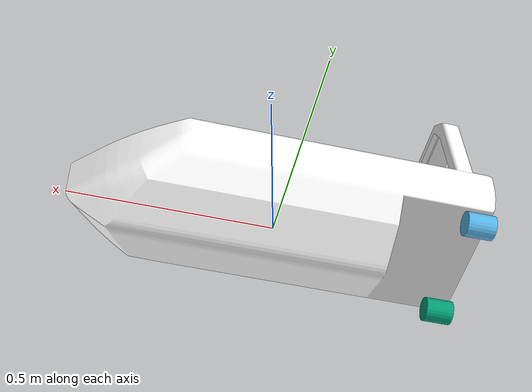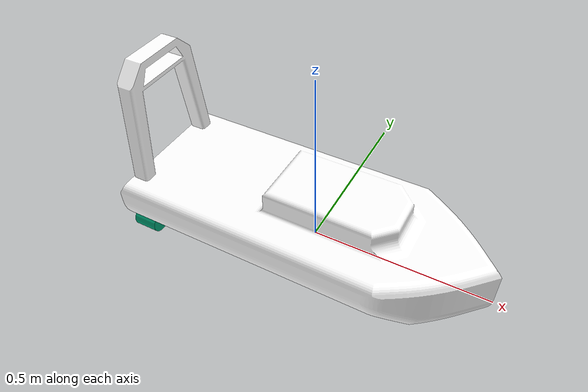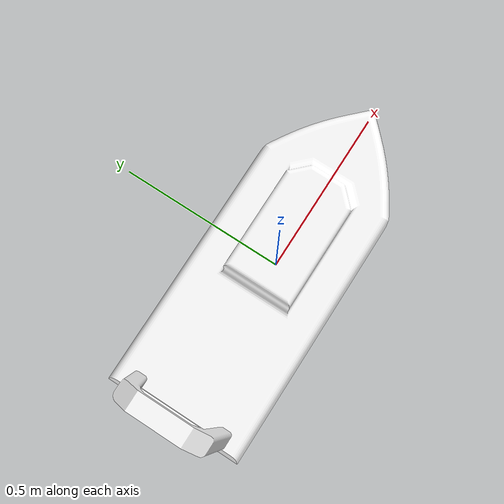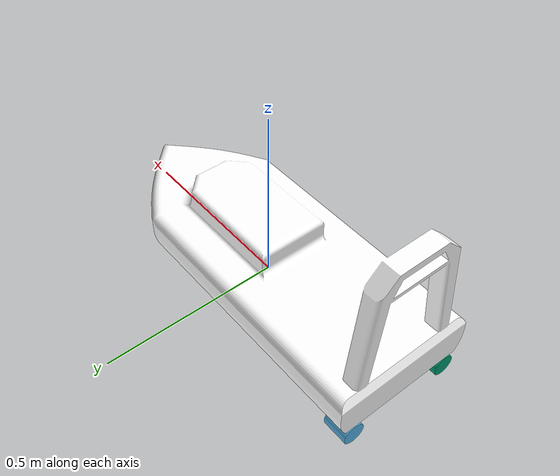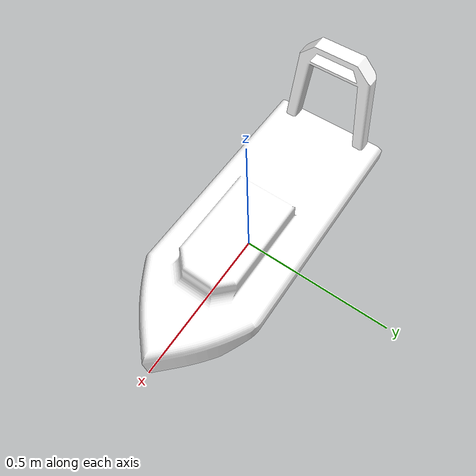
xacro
<?xml version='1.0'?>

<robot name="garbage_boat" xmlns:xacro="http://www.ros.org/wiki/xacro">
  <xacro:include filename="$(find garbage_boat)/urdf/common_macros.xacro" />
  <xacro:include filename="$(find garbage_boat)/urdf/garbage_boat.urdf.gazebo" />

  <material name="COLOR">
   <color rgba="1 1 1 1"/>
 </material>
  <link name='base_link'>
    <pose>0 0 0.1 0 0 0</pose>
    <visual name='chassis_visual'>
      <origin xyz="0 0 -0.1" rpy="0 0 ${pi/2}"/>
      <geometry>
        <mesh filename="package://garbage_boat/meshes/RobotBatPOrsjekt_v4_v5.stl" scale="0.001 0.001 0.001"/>
      </geometry>
      <material name="COLOR"/>
    </visual>
    <collision>
      <origin xyz="0 0 0.07" rpy="0 0 0"/>
      <geometry>
        <box size="1 0.3 0.1"/>
      </geometry>
    </collision>
    <inertial>
      <mass value="10"/>
      <inertia ixx="0.1075" ixy="0.0" ixz="0.0" iyy="10.0008" iyz="0.0" izz="10.0075"/>
    </inertial>
</link>

  <link name='left_thruster'>
    <visual>
      <geometry>
       <cylinder length="0.07" radius="0.03"/>
     </geometry>
     <origin rpy="${pi/2} 0 ${pi/2}" xyz="-0.465 0.15 -0.03"/>
   </visual>
  </link>

  <link name='right_thruster'>
    <visual>
      <geometry>
       <cylinder length="0.07" radius="0.03"/>
     </geometry>
     <origin rpy="${pi/2} 0 ${pi/2}" xyz="-0.465 -0.15 -0.03"/>
   </visual>
  </link>

  <joint name="base_to_left_thruster" type="fixed">
    <parent link="base_link"/>
    <child link="left_thruster"/>
  </joint>

  <joint name="base_to_right_thruster" type="fixed">
    <parent link="base_link"/>
    <child link="right_thruster"/>
  </joint>

  <joint name="left_front_wheel_j" type="continuous">
    <origin xyz="0.20 0.20 0" rpy="${-pi/2} 0 0"/>
    <parent link="base_link"/>
    <child link="lf_wheel"/>
    <axis xyz="0 0 1" rpy="0 0 0"/>
    <limit effort="100" velocity="100"/>
  </joint>

  <xacro:link_wheel link_name="lf_wheel">
    <!-- collison -->
    <origin xyz="0 0 0" rpy="0 0 0"/>
    <!-- inertia -->
    <origin xyz="0 0 0" rpy="0 0 0"/>
  </xacro:link_wheel>

  <joint name="right_front_wheel_j" type="continuous">
    <origin xyz="0.20 -0.20 0" rpy="${-pi/2} 0 0"/>
    <parent link="base_link"/>
    <child link="rf_wheel"/>
    <axis xyz="0 0 1" rpy="0 0 0"/>
    <limit effort="100" velocity="100"/>
  </joint>

  <xacro:link_wheel link_name="rf_wheel">
    <!-- collison -->
    <origin xyz="0 0 0" rpy="0 0 0"/>
    <!-- inertia -->
    <origin xyz="0 0 0" rpy="0 0 0"/>
  </xacro:link_wheel>

  <joint name="left_rear_wheel_j" type="continuous">
    <origin xyz="-0.20 0.20 0" rpy="${-pi/2} 0 0"/>
    <parent link="base_link"/>
    <child link="lr_wheel"/>
    <axis xyz="0 0 1" rpy="0 0 0"/>
    <limit effort="100" velocity="100"/>
  </joint>

  <xacro:link_wheel link_name="lr_wheel">
    <!-- collison -->
    <origin xyz="0 0 0" rpy="0 0 0"/>
    <!-- inertia -->
    <origin xyz="0 0 0" rpy="0 0 0"/>
  </xacro:link_wheel>

  <joint name="right_rear_wheel_j" type="continuous">
    <origin xyz="-0.20 -0.20 0" rpy="${-pi/2} 0 0"/>
    <parent link="base_link"/>
    <child link="rr_wheel"/>
    <axis xyz="0 0 1" rpy="0 0 0"/>
    <limit effort="100" velocity="100"/>
  </joint>

  <xacro:link_wheel link_name="rr_wheel">
    <!-- collison -->
    <origin xyz="0 0 0" rpy="0 0 0"/>
    <!-- inertia -->
    <origin xyz="0 0 0" rpy="0 0 0"/>
  </xacro:link_wheel>

</robot>

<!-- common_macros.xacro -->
<robot name="xacro_macros" xmlns:xacro="http://ros.org/wiki/xacro">

  <xacro:macro name="link_wheel" params="link_name length:=0.05 radius:=0.10 density:=15 *origin_col *origin_inertial">
    <xacro:property name="mass" value="${pi*length*pow(radius,2)*density}" />
    <link name="${link_name}">
      <collision>
        <xacro:insert_block name="origin_col" />
        <geometry>
          <cylinder length="${length}" radius="${radius}"/>
        </geometry>
      </collision>
      <inertial>
        <xacro:insert_block name="origin_inertial" />
        <mass value="${mass}"/>
        <inertia
          ixx="${mass*(3*pow(radius,2)+pow(length,2))/12}" ixy="0.0" ixz="0.0"
          iyy="${mass*(3*pow(radius,2)+pow(length,2))/12}" iyz="0.0"
          izz="${mass*pow(radius,2)/2}"/>
      </inertial>
    </link>
  </xacro:macro>

</robot>
